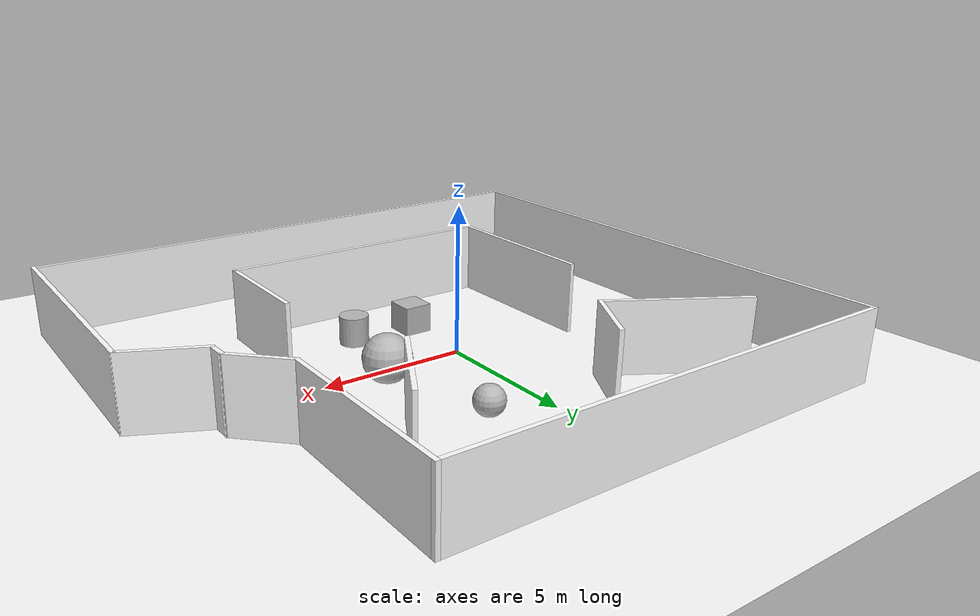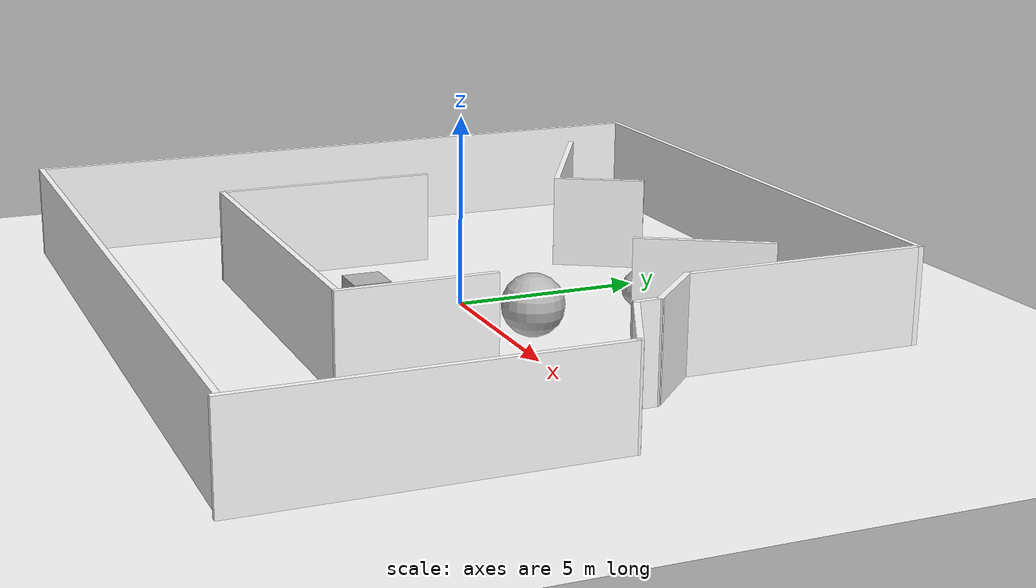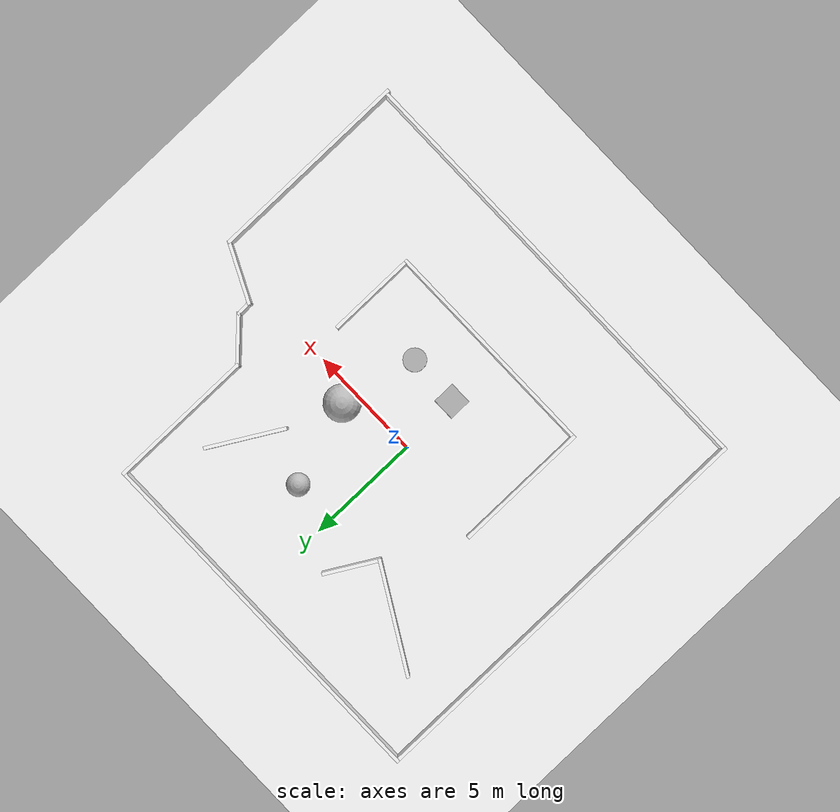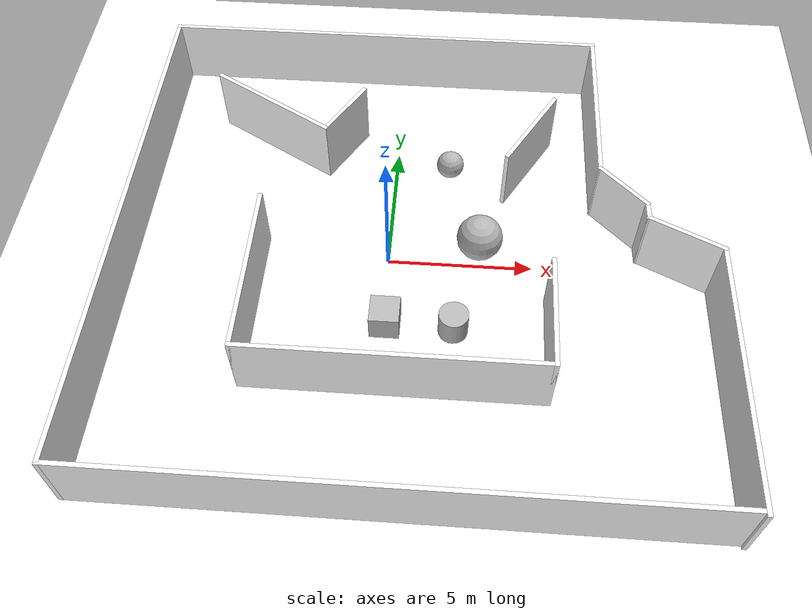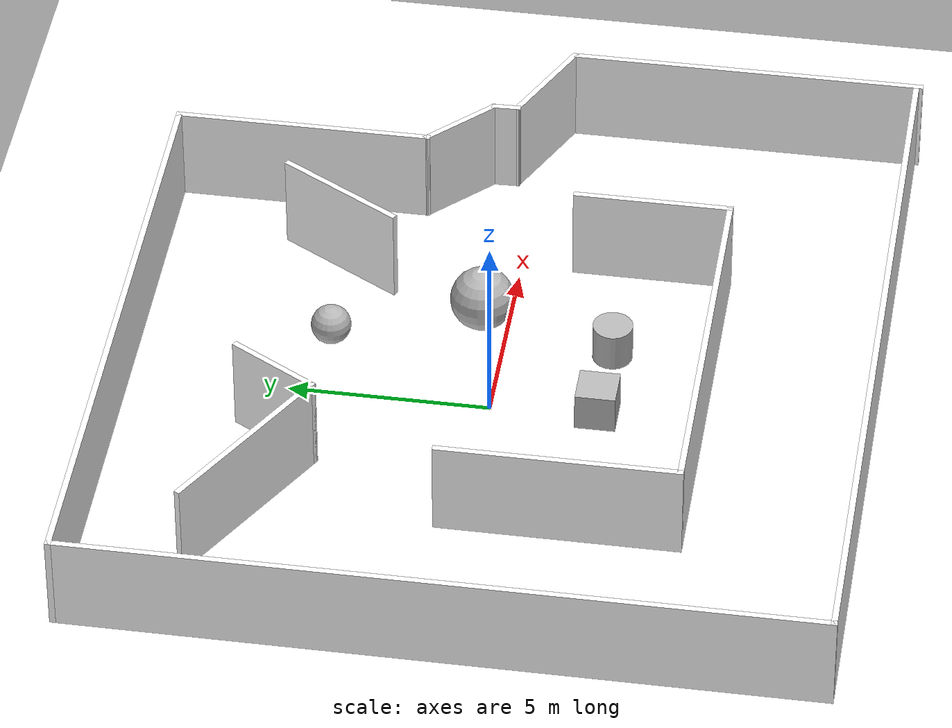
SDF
<sdf version="1.7">
 <world name="default">
  <light name="sun" type="directional">
   <pose>0 0 10 0 -0 0</pose>
   <diffuse>0.8 0.8 0.8 1</diffuse>
   <specular>0.2 0.2 0.2 1</specular>
   <attenuation>
    <range>1000</range>
    <constant>0.9</constant>
    <linear>0.01</linear>
    <quadratic>0.001</quadratic>
   </attenuation>
   <direction>-0.5 0.1 -0.9</direction>
   <spot><inner_angle>0</inner_angle><outer_angle>0</outer_angle><falloff>0</falloff></spot>
  </light>
  <model name="ground_plane">
   <static>1</static>
   <link name="link">
    <collision name="collision">
     <geometry><plane><normal>0 0 1</normal><size>100 100</size></plane></geometry>
     <surface><friction><ode><mu>100</mu><mu2>50</mu2></ode></friction></surface>
    </collision>
    <visual name="visual">
     <cast_shadows>0</cast_shadows>
     <geometry><plane><normal>0 0 1</normal><size>100 100</size></plane></geometry>
     <material>
      <script><uri>file://LAUNCH_FILE_REPLACE/textures/TEXTURE.material</uri><name>TEXTURE</name></script>
      <ambient>1 1 1 1</ambient>
     </material>
    </visual>
   </link>
  </model>
  <gravity>0 0 -9.8</gravity>
  <magnetic_field>6e-06 2.3e-05 -4.2e-05</magnetic_field>
  <atmosphere type="adiabatic"/>
  <physics type="ode">
   <max_step_size>0.001</max_step_size>
   <real_time_factor>1</real_time_factor>
   <real_time_update_rate>1000</real_time_update_rate>
  </physics>
  <scene><ambient>0.4 0.4 0.4 1</ambient><background>0.7 0.7 0.7 1</background><shadows>1</shadows></scene>
  <spherical_coordinates>
   <surface_model>EARTH_WGS84</surface_model>
   <latitude_deg>0</latitude_deg>
   <longitude_deg>0</longitude_deg>
   <elevation>0</elevation>
   <heading_deg>0</heading_deg>
  </spherical_coordinates>
  <model name="unit_box">
   <pose>0.106365 -2.63786 0.499993 4e-06 1e-05 3.7e-05</pose>
   <link name="link">
    <inertial>
     <mass>100</mass>
     <inertia>
      <ixx>0.166667</ixx>
      <ixy>0</ixy>
      <ixz>0</ixz>
      <iyy>0.166667</iyy>
      <iyz>0</iyz>
      <izz>0.166667</izz>
     </inertia>
    </inertial>
    <collision name="collision"><geometry><box><size>1 1 1</size></box></geometry></collision>
    <visual name="visual">
     <geometry><box><size>1 1 1</size></box></geometry>
     <material>
      <script><name>TEXTURE</name><uri>file://LAUNCH_FILE_REPLACE/textures/TEXTURE.material</uri></script>
     </material>
    </visual>
   </link>
  </model>
  <model name="unit_sphere">
   <pose>1.97645 4.27253 0.5 0 -0 0</pose>
   <link name="link">
    <inertial>
     <mass>100</mass>
     <inertia><ixx>0.1</ixx><ixy>0</ixy><ixz>0</ixz><iyy>0.1</iyy><iyz>0</iyz><izz>0.1</izz></inertia>
    </inertial>
    <collision name="collision"><geometry><sphere><radius>0.5</radius></sphere></geometry></collision>
    <visual name="visual">
     <geometry><sphere><radius>0.5</radius></sphere></geometry>
     <material>
      <script><name>TEXTURE</name><uri>file://LAUNCH_FILE_REPLACE/textures/TEXTURE.material</uri></script>
     </material>
    </visual>
   </link>
  </model>
  <model name="unit_cylinder">
   <pose>2.37986 -2.70712 0.499999 1e-06 2e-06 0.000258</pose>
   <link name="link">
    <inertial>
     <mass>100</mass>
     <inertia><ixx>0.145833</ixx><ixy>0</ixy><ixz>0</ixz><iyy>0.145833</iyy><iyz>0</iyz><izz>0.125</izz></inertia>
    </inertial>
    <collision name="collision">
     <geometry><cylinder><radius>0.5</radius><length>1</length></cylinder></geometry>
    </collision>
    <visual name="visual">
     <geometry><cylinder><radius>0.5</radius><length>1</length></cylinder></geometry>
     <material>
      <script><name>TEXTURE</name><uri>file://LAUNCH_FILE_REPLACE/textures/TEXTURE.material</uri></script>
     </material>
    </visual>
   </link>
  </model>
  <model name="unit_sphere_0">
   <pose>3.14912 0.663066 0.80146 0 -0 0</pose>
   <link name="link">
    <inertial>
     <mass>100</mass>
     <inertia><ixx>0.1</ixx><ixy>0</ixy><ixz>0</ixz><iyy>0.1</iyy><iyz>0</iyz><izz>0.1</izz></inertia>
    </inertial>
    <collision name="collision"><geometry><sphere><radius>0.80146</radius></sphere></geometry></collision>
    <visual name="visual">
     <geometry><sphere><radius>0.80146</radius></sphere></geometry>
     <material>
      <script><name>TEXTURE</name><uri>file://LAUNCH_FILE_REPLACE/textures/TEXTURE.material</uri></script>
     </material>
    </visual>
   </link>
  </model>
  <model name="Walls">
   <pose>1.05942 -0.189939 0 0 -0 0</pose>
   <link name="Wall_1">
    <collision name="Wall_1_Collision">
     <geometry><box><size>9 0.15 2.5</size></box></geometry>
     <pose>0 0 1.25 0 -0 0</pose>
    </collision>
    <visual name="Wall_1_Visual">
     <pose>0 0 1.25 0 -0 0</pose>
     <geometry><box><size>9 0.15 2.5</size></box></geometry>
     <material>
      <script><uri>file://LAUNCH_FILE_REPLACE/textures/TEXTURE.material</uri><name>TEXTURE</name></script>
      <ambient>1 1 1 1</ambient>
     </material>
     <meta><layer>0</layer></meta>
    </visual>
    <pose>9.96495 -4.79573 0 0 -0 1.5708</pose>
   </link>
   <link name="Wall_11">
    <collision name="Wall_11_Collision">
     <geometry><box><size>6 0.15 2.5</size></box></geometry>
     <pose>0 0 1.25 0 -0 0</pose>
    </collision>
    <visual name="Wall_11_Visual">
     <pose>0 0 1.25 0 -0 0</pose>
     <geometry><box><size>6 0.15 2.5</size></box></geometry>
     <material>
      <script><uri>file://LAUNCH_FILE_REPLACE/textures/TEXTURE.material</uri><name>TEXTURE</name></script>
      <ambient>1 1 1 1</ambient>
     </material>
     <meta><layer>0</layer></meta>
    </visual>
    <pose>-5.41724 -2.08941 0 0 -0 -1.5708</pose>
   </link>
   <link name="Wall_12">
    <collision name="Wall_12_Collision">
     <geometry><box><size>10 0.15 2.5</size></box></geometry>
     <pose>0 0 1.25 0 -0 0</pose>
    </collision>
    <visual name="Wall_12_Visual">
     <pose>0 0 1.25 0 -0 0</pose>
     <geometry><box><size>10 0.15 2.5</size></box></geometry>
     <material>
      <script><uri>file://LAUNCH_FILE_REPLACE/textures/TEXTURE.material</uri><name>TEXTURE</name></script>
      <ambient>1 1 1 1</ambient>
     </material>
     <meta><layer>0</layer></meta>
    </visual>
    <pose>-0.492243 -5.01441 0 0 -0 0</pose>
   </link>
   <link name="Wall_13">
    <collision name="Wall_13_Collision">
     <geometry><box><size>4 0.15 2.5</size></box></geometry>
     <pose>0 0 1.25 0 -0 0</pose>
    </collision>
    <visual name="Wall_13_Visual">
     <pose>0 0 1.25 0 -0 0</pose>
     <geometry><box><size>4 0.15 2.5</size></box></geometry>
     <material>
      <script><uri>file://LAUNCH_FILE_REPLACE/textures/TEXTURE.material</uri><name>TEXTURE</name></script>
      <ambient>1 1 1 1</ambient>
     </material>
     <meta><layer>0</layer></meta>
    </visual>
    <pose>4.43276 -3.08941 0 0 -0 1.5708</pose>
   </link>
   <link name="Wall_16">
    <collision name="Wall_16_Collision">
     <geometry><box><size>3.5 0.15 2.5</size></box></geometry>
     <pose>0 0 1.25 0 -0 0</pose>
    </collision>
    <visual name="Wall_16_Visual">
     <pose>0 0 1.25 0 -0 0</pose>
     <geometry><box><size>3.5 0.15 2.5</size></box></geometry>
     <material>
      <script><uri>file://LAUNCH_FILE_REPLACE/textures/TEXTURE.material</uri><name>TEXTURE</name></script>
      <ambient>1 1 1 1</ambient>
     </material>
     <meta><layer>0</layer></meta>
    </visual>
    <pose>3.74826 4.6771 0 0 -0 -2.0944</pose>
   </link>
   <link name="Wall_18">
    <collision name="Wall_18_Collision">
     <geometry><box><size>5 0.15 2.5</size></box></geometry>
     <pose>0 0 1.25 0 -0 0</pose>
    </collision>
    <visual name="Wall_18_Visual">
     <pose>0 0 1.25 0 -0 0</pose>
     <geometry><box><size>5 0.15 2.5</size></box></geometry>
     <material>
      <script><uri>file://LAUNCH_FILE_REPLACE/textures/TEXTURE.material</uri><name>TEXTURE</name></script>
      <ambient>1 1 1 1</ambient>
     </material>
     <meta><layer>0</layer></meta>
    </visual>
    <pose>-5.70317 5.34346 0 0 -0 -0.523599</pose>
   </link>
   <link name="Wall_19">
    <collision name="Wall_19_Collision">
     <geometry><box><size>2.5 0.15 2.5</size></box></geometry>
     <pose>0 0 1.25 0 -0 0</pose>
    </collision>
    <visual name="Wall_19_Visual">
     <pose>0 0 1.25 0 -0 0</pose>
     <geometry><box><size>2.5 0.15 2.5</size></box></geometry>
     <material>
      <script><uri>file://LAUNCH_FILE_REPLACE/textures/TEXTURE.material</uri><name>TEXTURE</name></script>
      <ambient>1 1 1 1</ambient>
     </material>
     <meta><layer>0</layer></meta>
    </visual>
    <pose>-3.01556 5.14854 0 0 -0 1.0472</pose>
   </link>
   <link name="Wall_2">
    <collision name="Wall_2_Collision">
     <geometry><box><size>2.75904 0.15 2.5</size></box></geometry>
     <pose>0 0 1.25 0 -0 0</pose>
    </collision>
    <visual name="Wall_2_Visual">
     <pose>0 0 1.25 0 -0 0</pose>
     <geometry><box><size>2.75904 0.15 2.5</size></box></geometry>
     <material>
      <script><uri>file://LAUNCH_FILE_REPLACE/textures/TEXTURE.material</uri><name>TEXTURE</name></script>
      <ambient>1 1 1 1</ambient>
     </material>
     <meta><layer>0</layer></meta>
    </visual>
    <pose>8.78995 0.219103 0 0 -0 2.69221</pose>
   </link>
   <link name="Wall_3">
    <collision name="Wall_3_Collision">
     <geometry><box><size>0.730235 0.15 2.5</size></box></geometry>
     <pose>0 0 1.25 0 -0 0</pose>
    </collision>
    <visual name="Wall_3_Visual">
     <pose>0 0 1.25 0 -0 0</pose>
     <geometry><box><size>0.730235 0.15 2.5</size></box></geometry>
     <material>
      <script><uri>file://LAUNCH_FILE_REPLACE/textures/TEXTURE.material</uri><name>TEXTURE</name></script>
      <ambient>1 1 1 1</ambient>
     </material>
     <meta><layer>0</layer></meta>
    </visual>
    <pose>7.60489 1.07575 0 0 -0 1.60547</pose>
   </link>
   <link name="Wall_4">
    <collision name="Wall_4_Collision">
     <geometry><box><size>2.25 0.15 2.5</size></box></geometry>
     <pose>0 0 1.25 0 -0 0</pose>
    </collision>
    <visual name="Wall_4_Visual">
     <pose>0 0 1.25 0 -0 0</pose>
     <geometry><box><size>2.25 0.15 2.5</size></box></geometry>
     <material>
      <script><uri>file://LAUNCH_FILE_REPLACE/textures/TEXTURE.material</uri><name>TEXTURE</name></script>
      <ambient>1 1 1 1</ambient>
     </material>
     <meta><layer>0</layer></meta>
    </visual>
    <pose>6.85238 2.12826 0 0 -0 2.35619</pose>
   </link>
   <link name="Wall_6">
    <collision name="Wall_6_Collision">
     <geometry><box><size>6.5 0.15 2.5</size></box></geometry>
     <pose>0 0 1.25 0 -0 0</pose>
    </collision>
    <visual name="Wall_6_Visual">
     <pose>0 0 1.25 0 -0 0</pose>
     <geometry><box><size>6.5 0.15 2.5</size></box></geometry>
     <material>
      <script><uri>file://LAUNCH_FILE_REPLACE/textures/TEXTURE.material</uri><name>TEXTURE</name></script>
      <ambient>1 1 1 1</ambient>
     </material>
     <meta><layer>0</layer></meta>
    </visual>
    <pose>6.10991 6.04573 0 0 -0 1.5708</pose>
   </link>
   <link name="Wall_7">
    <collision name="Wall_7_Collision">
     <geometry><box><size>16.25 0.15 2.5</size></box></geometry>
     <pose>0 0 1.25 0 -0 0</pose>
    </collision>
    <visual name="Wall_7_Visual">
     <pose>0 0 1.25 0 -0 0</pose>
     <geometry><box><size>16.25 0.15 2.5</size></box></geometry>
     <material>
      <script><uri>file://LAUNCH_FILE_REPLACE/textures/TEXTURE.material</uri><name>TEXTURE</name></script>
      <ambient>1 1 1 1</ambient>
     </material>
     <meta><layer>0</layer></meta>
    </visual>
    <pose>-1.94009 9.22073 0 0 -0 3.14159</pose>
   </link>
   <link name="Wall_8">
    <collision name="Wall_8_Collision">
     <geometry><box><size>18.5 0.15 2.5</size></box></geometry>
     <pose>0 0 1.25 0 -0 0</pose>
    </collision>
    <visual name="Wall_8_Visual">
     <pose>0 0 1.25 0 -0 0</pose>
     <geometry><box><size>18.5 0.15 2.5</size></box></geometry>
     <material>
      <script><uri>file://LAUNCH_FILE_REPLACE/textures/TEXTURE.material</uri><name>TEXTURE</name></script>
      <ambient>1 1 1 1</ambient>
     </material>
     <meta><layer>0</layer></meta>
    </visual>
    <pose>-9.99009 0.045727 0 0 -0 -1.5708</pose>
   </link>
   <link name="Wall_9">
    <collision name="Wall_9_Collision">
     <geometry><box><size>20 0.15 2.5</size></box></geometry>
     <pose>0 0 1.25 0 -0 0</pose>
    </collision>
    <visual name="Wall_9_Visual">
     <pose>0 0 1.25 0 -0 0</pose>
     <geometry><box><size>20 0.15 2.5</size></box></geometry>
     <material>
      <script><uri>file://LAUNCH_FILE_REPLACE/textures/TEXTURE.material</uri><name>TEXTURE</name></script>
      <ambient>1 1 1 1</ambient>
     </material>
     <meta><layer>0</layer></meta>
    </visual>
    <pose>-0.065086 -9.12927 0 0 -0 0</pose>
   </link>
   <static>1</static>
  </model>
 </world>
</sdf>
